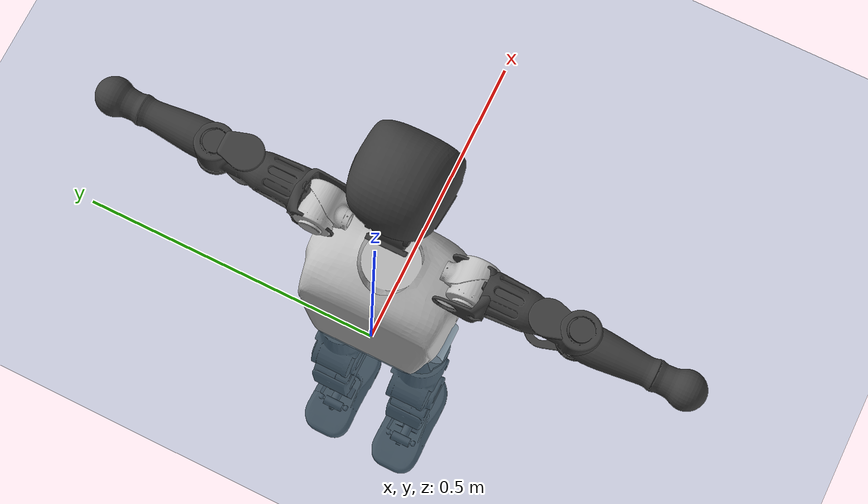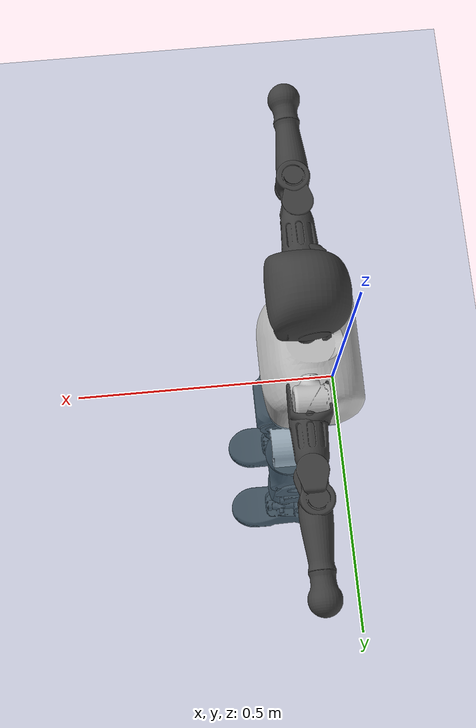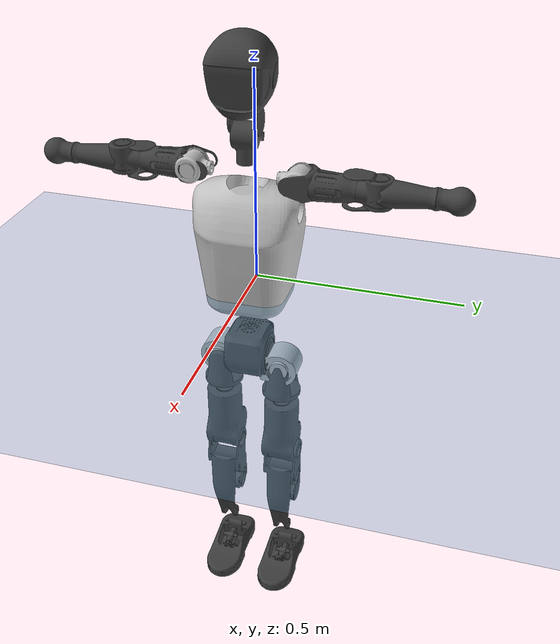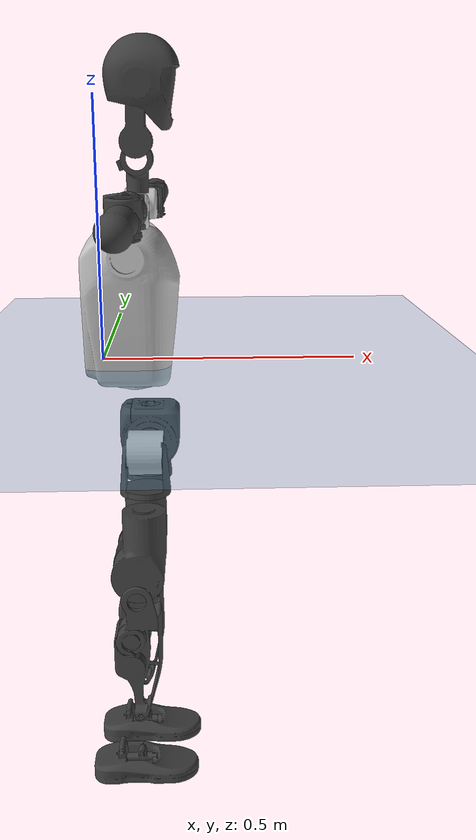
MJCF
<mujoco model="T1">
  <compiler angle="radian" assetdir="assets" balanceinertia="true" inertiafromgeom="false"/>

  <option timestep="0.005" density="1.2" viscosity="2e-05"/>

  <size nkey="1"/>

  <visual>
    <quality shadowsize="8192"/>
    <map shadowclip="0.5"/>
  </visual>

  <default>
    <default class="/">
      <joint armature="0.01" damping="0.01" frictionloss="0.1"/>
      <geom contype="0" conaffinity="0" group="1" solref="-1000 -80"/>
      <site size="0.01 0.005 0.005" group="5"/>
      <general forcelimited="true" biastype="affine" gainprm="25" biasprm="0 -25 -0.6"/>
      <default class="t1">
        <geom rgba="0.25 0.25 0.25 1"/>
        <default class="visual">
          <geom type="mesh" group="2"/>
        </default>
        <default class="collision">
          <geom group="3"/>
        </default>
        <default class="foot">
          <geom size="0.1115 0.05 0.015" type="box" condim="6" group="4" priority="1" solimp="0.015 1 0.015"/>
        </default>
        <default class="reward_collision_sphere">
          <geom group="5" rgba="1 0 0 1"/>
        </default>
      </default>
    </default>
  </default>

  <asset>
    <texture type="skybox" colorspace="auto" name="//unnamed_texture_0" builtin="gradient" rgb1="0.95 0.95 0.95" rgb2="0.95 0.95 0.95" width="100" height="600"/>
    <texture type="2d" colorspace="auto" name="texplane" builtin="checker" rgb1="0.345 0.575 0.748" rgb2="0.345 0.575 0.748" markrgb="1 1 1" width="512" height="512"/>
    <material name="MatPlane" class="/" texture="texplane" texuniform="true" texrepeat="2 2" specular="0.9"/>
    <mesh name="Trunk" class="/" file="Trunk.stl"/>
    <mesh name="H1" class="/" file="H1.stl"/>
    <mesh name="H2" class="/" file="H2.stl"/>
    <mesh name="AL1" class="/" file="AL1.stl"/>
    <mesh name="AL2" class="/" file="AL2.stl"/>
    <mesh name="AL3" class="/" file="AL3.stl"/>
    <mesh name="left_hand_link" class="/" file="left_hand_link.stl"/>
    <mesh name="AR1" class="/" file="AR1.stl"/>
    <mesh name="AR2" class="/" file="AR2.stl"/>
    <mesh name="AR3" class="/" file="AR3.stl"/>
    <mesh name="right_hand_link" class="/" file="right_hand_link.stl"/>
    <mesh name="Waist" class="/" file="Waist.stl"/>
    <mesh name="Hip_Pitch_Left" class="/" file="Hip_Pitch_Left.stl"/>
    <mesh name="Hip_Roll_Left" class="/" file="Hip_Roll_Left.stl"/>
    <mesh name="Hip_Yaw_Left" class="/" file="Hip_Yaw_Left.stl"/>
    <mesh name="Shank_Left" class="/" file="Shank_Left.stl"/>
    <mesh name="Ankle_Cross_Left" class="/" file="Ankle_Cross_Left.stl"/>
    <mesh name="left_foot_link" class="/" file="left_foot_link.stl"/>
    <mesh name="Hip_Pitch_Right" class="/" file="Hip_Pitch_Right.stl"/>
    <mesh name="Hip_Roll_Right" class="/" file="Hip_Roll_Right.stl"/>
    <mesh name="Hip_Yaw_Right" class="/" file="Hip_Yaw_Right.stl"/>
    <mesh name="Shank_Right" class="/" file="Shank_Right.stl"/>
    <mesh name="Ankle_Cross_Right" class="/" file="Ankle_Cross_Right.stl"/>
    <mesh name="right_foot_link" class="/" file="right_foot_link.stl"/>
  </asset>

  <worldbody>
    <geom name="floor" class="/" size="100 100 0.125" type="plane" group="0" material="MatPlane"/>
    <light name="toplight_shadow" class="/" pos="0 0 5" dir="0.0990148 0.0990148 -0.990148" type="directional" ambient="0.04 0.04 0.04" diffuse="0.55 0.55 0.55" specular="0.12 0.12 0.12"/>
    <light name="toplight_fill" class="/" pos="0 0 5" dir="0.0990148 0.0990148 -0.990148" type="directional" castshadow="false" ambient="0.04 0.04 0.04" diffuse="0.3 0.3 0.3" specular="0.08 0.08 0.08"/>
    <body name="trunk" childclass="t1" pos="0.000601355 0.00070458 -0.00601751" quat="1 -6.48826e-05 0.000109399 -0.000148739">
      <inertial pos="0.0653369 0.00418994 0.142686" quat="0.999564 0.000115144 -0.0292424 0.00396377" mass="15.2803" diaginertia="0.26569 0.0120584 0.245088"/>
      <joint name="//unnamed_joint_0" type="free" armature="0" damping="0" frictionloss="0"/>
      <geom name="//unnamed_geom_1" class="visual" rgba="0.76 0.76 0.76 1" mesh="Trunk"/>
      <geom name="//unnamed_geom_2" class="collision" size="0.0816924 0.108923 0.163385" pos="0.0746672 0 0.160861" type="box"/>
      <geom name="//unnamed_geom_3" class="reward_collision_sphere" size="0.125262" pos="0.0746672 0 0.134051"/>
      <geom name="//unnamed_geom_4" class="reward_collision_sphere" size="0.0163385" pos="0.0746672 0.0580327 0"/>
      <geom name="//unnamed_geom_5" class="reward_collision_sphere" size="0.0163385" pos="0.0746672 -0.0580327 0"/>
      <geom name="//unnamed_geom_6" class="reward_collision_sphere" size="0.0163385" pos="0.0746672 0.0730529 0.241291"/>
      <geom name="//unnamed_geom_7" class="reward_collision_sphere" size="0.0163385" pos="0.0746672 -0.0730529 0.241291"/>
      <site name="imu" pos="0.00111949 -0.0380437 0.00951404" size="0.0108923"/>
      <camera name="track" pos="0 -1.36547 0" quat="0.707107 0.707107 0 0" mode="trackcom"/>
      <camera name="ego_camera" pos="0.151823 0 0.563013" quat="-0.5 -0.5 0.5 0.5"/>
      <body name="H1" pos="0.0772513 0.00331226 0.326482" quat="0.999993 -0.0012243 0.00328477 0.00105889">
        <inertial pos="-0.00332016 -0.00300336 0.0749366" quat="0.762717 -0.010505 -0.00164819 0.646645" mass="0.634883" diaginertia="0.000754824 3.21952e-05 0.000656649"/>
        <joint name="AAHead_yaw" pos="0 0 0" axis="0.00232985 -0.00468888 0.999986" range="-1.60876 1.38273" armature="0.00990026" damping="0.0326225" frictionloss="0.133176"/>
        <geom name="//unnamed_geom_8" class="visual" mesh="H1"/>
        <body name="H2" pos="-0.000943957 0.00159088 0.0937577" quat="0.999986 0.00361912 0.00225133 -0.00304715">
          <inertial pos="0.0115908 -0.00427864 0.126265" quat="0.98853 0.113867 -0.0802421 -0.0583391" mass="0.809867" diaginertia="0.00598418 0.000270852 0.00776642"/>
          <joint name="Head_pitch" pos="0 0 0" axis="-0.0091201 -0.999576 0.0276467" stiffness="0.0208593" range="-1.21628 0.385149" armature="0.0119432" damping="0.00167271" frictionloss="0.118767"/>
          <geom name="//unnamed_geom_9" class="visual" mesh="H2"/>
          <geom name="//unnamed_geom_10" class="collision" size="0.0871386" pos="0.0124445 0 0.147456"/>
          <geom name="//unnamed_geom_11" class="reward_collision_sphere" size="0.0980309" pos="0.0248891 0 0.134051"/>
        </body>
      </body>
      <body name="AL1" pos="0.0768832 0.0746449 0.298417" quat="0.999999 -0.000657178 0.00121343 -0.000431695">
        <inertial pos="-0.00174643 0.0344603 9.03e-05" quat="0.494575 0.5304 -0.486573 0.487153" mass="0.750783" diaginertia="0.00451935 0.000206733 0.00132496"/>
        <joint name="Left_Shoulder_Pitch" pos="0 0 0" axis="0.0173861 0.999848 0.00152254" stiffness="0.0164986" range="-3.48485 1.23644" armature="0.0139272" damping="0.0250436" frictionloss="0.12253"/>
        <geom name="//unnamed_geom_12" class="visual" rgba="0.76 0.76 0.76 1" mesh="AL1"/>
        <body name="AL2" pos="0.00500012 0.0327919 -0.000106596" quat="0.999992 -0.00105764 -0.000808265 -0.00387487">
          <inertial pos="-0.00499813 0.0224639 -0.000150695" quat="0.485765 0.524699 -0.488049 0.500531" mass="0.222058" diaginertia="0.00128832 5.50864e-05 0.000849747"/>
          <joint name="Left_Shoulder_Roll" pos="0 0 0" axis="-0.999856 -0.0138414 0.00983771" range="-1.56208 1.73041" armature="0.00843146" damping="0" frictionloss="0.101234"/>
          <geom name="//unnamed_geom_13" class="visual" mesh="AL2"/>
          <body name="AL3" pos="0.00516826 0.0433951 -0.000258305" quat="0.999993 0.0037204 -0.000913433 0.000377489">
            <inertial pos="-0.00879843 0.0589419 -0.00310796" quat="0.735787 0.676636 -0.012196 0.0251501" mass="1.14762" diaginertia="0.0337563 0.00143848 0.00240311"/>
            <joint name="Left_Elbow_Pitch" pos="0 0 0" axis="0.000370228 -1 0.000843406" range="-2.31128 2.07648" armature="0.00734889" damping="0.0118268" frictionloss="0.056317"/>
            <geom name="//unnamed_geom_14" class="visual" mesh="AL3"/>
            <geom name="//unnamed_geom_15" class="collision" size="0.032677 0.0816924" pos="0 0.0341369 0" quat="0.707105 0.707108 0 0" type="cylinder"/>
            <geom name="//unnamed_geom_16" class="reward_collision_sphere" size="0.0392124"/>
            <body name="left_hand_link" pos="0.00455344 0.0984802 0.0018522" quat="0.999989 0.00140856 -0.00359196 0.0026805">
              <inertial pos="-0.000654254 0.0693129 0.00241802" quat="0.707915 0.706297 -0.000483603 -0.000424527" mass="0.442828" diaginertia="0.0217761 0.00112091 0.00102488"/>
              <joint name="Left_Elbow_Yaw" pos="0 0 0" axis="0.0284555 -0.0215906 0.999362" range="-2.3791 -0.191145" armature="0.0142549" damping="0.0424681" frictionloss="0.0913741"/>
              <geom name="//unnamed_geom_17" class="visual" mesh="left_hand_link"/>
              <geom name="//unnamed_geom_18" class="collision" size="0.032677 0.0953078" pos="0 0.0887558 0" quat="0.707105 0.707108 0 0" type="cylinder"/>
              <geom name="//unnamed_geom_19" class="reward_collision_sphere" size="0.0544616"/>
              <geom name="//unnamed_geom_20" class="reward_collision_sphere" size="0.0381231" pos="0 0.0751011 0"/>
              <geom name="//unnamed_geom_21" class="reward_collision_sphere" size="0.0381231" pos="0 0.146788 0"/>
            </body>
          </body>
        </body>
      </body>
      <body name="AR1" pos="0.0705204 -0.0786594 0.301927" quat="1 0.000350121 0.000358869 -4.24347e-05">
        <inertial pos="-0.000458393 -0.0234056 0.00211998" quat="0.503639 0.494178 -0.50572 0.496369" mass="0.656174" diaginertia="0.00399758 0.000199729 0.00124093"/>
        <joint name="Right_Shoulder_Pitch" pos="0 0 0" axis="0.0290776 -0.998756 -0.0405111" stiffness="0.0129158" range="-1.21729 3.13672" armature="0.0105818" damping="0" frictionloss="0.158235"/>
        <geom name="//unnamed_geom_22" class="visual" rgba="0.76 0.76 0.76 1" mesh="AR1"/>
        <body name="AR2" pos="-0.0102718 -0.0235021 -0.000206561" quat="1 -0.000110907 -9.17922e-05 8.89312e-05">
          <inertial pos="-0.00102946 -0.0253878 0.00256364" quat="0.512847 0.489315 -0.513692 0.483403" mass="0.16439" diaginertia="0.00105414 4.75487e-05 0.000666099"/>
          <joint name="Right_Shoulder_Roll" pos="0 0 0" axis="-0.999391 0.00273521 0.0348001" stiffness="0.0319292" range="-1.70487 1.45578" armature="0.0104161" damping="0.0395271" frictionloss="0.0723756"/>
          <geom name="//unnamed_geom_23" class="visual" mesh="AR2"/>
          <body name="AR3" pos="0.00726607 -0.0408978 0.00262278" quat="0.999999 0.000898 0.000940458 0.00112221">
            <inertial pos="-0.00121001 -0.0645414 0.00313" quat="0.709829 0.704282 0.0113142 -0.00133565" mass="1.04931" diaginertia="0.0330239 0.00163208 0.00229327"/>
            <joint name="Right_Elbow_Pitch" pos="0 0 0" axis="0.00278993 0.999974 -0.0065854" stiffness="0.0534774" range="-2.145 2.41362" armature="0.00997095" damping="0.00231191" frictionloss="0.105539"/>
            <geom name="//unnamed_geom_24" class="visual" mesh="AR3"/>
            <geom name="//unnamed_geom_25" class="collision" size="0.032677 0.0816924" pos="0 -0.0341369 0" quat="0.707105 0.707108 0 0" type="cylinder"/>
            <geom name="//unnamed_geom_26" class="reward_collision_sphere" size="0.0392124"/>
            <body name="right_hand_link" pos="-0.00285468 -0.0983527 -0.00563233" quat="1 0.00025526 3.94784e-05 -0.000163021">
              <inertial pos="-0.00153352 -0.0734996 0.0100735" quat="0.689846 0.723954 0.00166348 -0.000878817" mass="0.501189" diaginertia="0.0261783 0.00125698 0.00100429"/>
              <joint name="Right_Elbow_Yaw" pos="0 0 0" axis="0.0257535 0.00487189 0.999656" stiffness="0.0004511" range="-0.0330366 2.29107" armature="0.0104601" damping="0.0113228" frictionloss="0.0996237"/>
              <geom name="//unnamed_geom_27" class="visual" mesh="right_hand_link"/>
              <geom name="//unnamed_geom_28" class="collision" size="0.032677 0.0953078" pos="0 -0.0887558 0" quat="0.707105 0.707108 0 0" type="cylinder"/>
              <geom name="//unnamed_geom_29" class="reward_collision_sphere" size="0.0544616"/>
              <geom name="//unnamed_geom_30" class="reward_collision_sphere" size="0.0381231" pos="0 -0.0751011 0"/>
              <geom name="//unnamed_geom_31" class="reward_collision_sphere" size="0.0381231" pos="0 -0.146788 0"/>
            </body>
          </body>
        </body>
      </body>
      <body name="Waist" pos="0.0887645 0.0071513 -0.154478" quat="0.999995 -0.00149037 0.00158341 0.00215624">
        <inertial pos="0.00529973 0.00618287 0.0110799" quat="0.983662 0.000419073 -0.180009 0.00242746" mass="3.49258" diaginertia="0.0178 0.000892021 0.023658"/>
        <joint name="Waist" pos="0 0 0" axis="0.0088088 0.0202546 0.999756" range="-1.60488 1.54213" armature="0.0104375" damping="0.0149785" frictionloss="0.157102"/>
        <geom name="//unnamed_geom_32" class="visual" mesh="Waist"/>
        <body name="Hip_Pitch_Left" pos="-0.00165546 0.0808437 -0.00640829" quat="0.999994 -0.000223037 -0.00334115 0.000103811">
          <inertial pos="0.00333886 -0.00512262 -0.0246369" quat="0.976554 0.213816 0.0210085 0.0135441" mass="1.32461" diaginertia="0.0055501 0.000197126 0.00580627"/>
          <joint name="Left_Hip_Pitch" pos="0 0 0" axis="-0.00129488 0.999997 0.00208926" stiffness="0.04184" range="-1.82965 1.55517" armature="0.0110876" damping="0.0170054" frictionloss="0.0996423"/>
          <geom name="//unnamed_geom_33" class="visual" rgba="0.76 0.76 0.76 1" mesh="Hip_Pitch_Left"/>
          <body name="Hip_Roll_Left" pos="-0.0078287 -0.00179926 -0.0306814" quat="0.999986 -0.000217888 -0.00458305 -0.00249642">
            <inertial pos="0.00983725 0.00666521 -0.0723777" quat="0.71869 0.0328058 0.0201914 0.694263" mass="0.513512" diaginertia="0.00571188 0.000230042 0.00227246"/>
            <joint name="Left_Hip_Roll" pos="0 0 0" axis="-0.998659 -0.00709487 0.0512789" range="-1.45359 0.0344934" armature="0.00688807" damping="0.0111917" frictionloss="0.0993352"/>
            <geom name="//unnamed_geom_34" class="visual" mesh="Hip_Roll_Left"/>
            <geom name="//unnamed_geom_35" class="reward_collision_sphere" size="0.0599078"/>
            <body name="Hip_Yaw_Left" pos="-0.0108465 -0.00187795 -0.116938" quat="0.99999 3.87068e-05 0.000624615 -0.00434342">
              <inertial pos="-0.00790948 -0.00206635 -0.116444" quat="0.694881 -0.0352191 -0.0354815 0.717385" mass="2.7339" diaginertia="0.0817213 0.00377725 0.010363"/>
              <joint name="Left_Hip_Yaw" pos="0 0 0" axis="-0.0148855 0.000531921 -0.999889" range="-1.00636 1.18575" armature="0.0115385" damping="0" frictionloss="0.093656"/>
              <geom name="//unnamed_geom_36" class="visual" mesh="Hip_Yaw_Left"/>
              <geom name="//unnamed_geom_37" class="collision" size="0.0544616 0.0871386" type="cylinder"/>
              <body name="Shank_Left" pos="-0.0193918 0.00111925 -0.170157" quat="0.999999 0.000893509 -0.000765781 -4.00998e-05">
                <inertial pos="-0.0142518 0.00768156 -0.165296" quat="0.997711 0.00158411 -0.0214661 0.0641041" mass="2.31593" diaginertia="0.104888 0.00544543 0.0081143"/>
                <joint name="Left_Knee_Pitch" pos="0 0 0" axis="-0.0269927 0.999615 -0.00634601" range="-0.0740397 2.29562" armature="0.0119216" damping="0" frictionloss="0.117339"/>
                <geom name="//unnamed_geom_38" class="visual" mesh="Shank_Left"/>
                <geom name="//unnamed_geom_39" class="collision" size="0.0544616 0.0816924" pos="0 0 -0.160861" type="cylinder"/>
                <geom name="//unnamed_geom_40" class="reward_collision_sphere" size="0.0708001"/>
                <body name="Ankle_Cross_Left" pos="0.00137754 0.00382003 -0.384304" quat="0.999999 -0.000103742 0.00150907 0.000842472">
                  <inertial pos="-0.0101737 -0.00096122 -0.00736618" quat="0.446172 0.553872 0.543905 0.445336" mass="0.0860845" diaginertia="8.4901e-05 3.96716e-06 4.97165e-05"/>
                  <joint name="Left_Ankle_Pitch" pos="0 0 0" axis="-0.0094108 0.999914 0.00911283" range="-0.856008 0.329492" armature="0.0116732" damping="0" frictionloss="0.138529"/>
                  <geom name="//unnamed_geom_41" class="visual" mesh="Ankle_Cross_Left"/>
                  <body name="left_foot_link" pos="0.000990919 -0.00333771 -0.0116565" quat="1 9.5809e-06 1.17126e-05 1.34359e-05">
                    <inertial pos="-0.00166236 -0.00654006 -0.0138654" quat="-0.0180677 0.622844 0.0134427 0.782022" mass="0.972988" diaginertia="0.00694434 0.000336024 0.00908768"/>
                    <joint name="Left_Ankle_Roll" pos="0 0 0" axis="-0.999783 0.01448 -0.0149651" range="-0.420266 0.263123" armature="0.00595501" damping="0.010096" frictionloss="0.101829"/>
                    <geom name="//unnamed_geom_42" class="visual" mesh="left_foot_link"/>
                    <geom name="left_foot" class="foot" size="0.103928 0.0634742 0.0165994" pos="0.0124445 0 -0.0201076"/>
                    <geom name="//unnamed_geom_44" class="reward_collision_sphere" size="0.0566401" pos="0.0124445 0 -0.0201076"/>
                    <geom name="//unnamed_geom_45" class="reward_collision_sphere" size="0.032677" pos="0.118223 -0.015703 -0.0201076"/>
                    <geom name="//unnamed_geom_46" class="reward_collision_sphere" size="0.032677" pos="-0.0871117 -0.015703 -0.0201076"/>
                    <site name="left_foot" class="foot" pos="0.0124445 0 -0.0201076" size="0.0108923"/>
                  </body>
                </body>
              </body>
            </body>
          </body>
        </body>
        <body name="Hip_Pitch_Right" pos="-0.00717887 -0.0744899 0.00604063" quat="0.999999 -0.000570694 -0.00081467 -0.000766784">
          <inertial pos="0.00840736 0.00550191 -0.0237331" quat="0.97579 -0.217161 0.0192033 -0.0174959" mass="1.39866" diaginertia="0.00547612 0.000223232 0.00558368"/>
          <joint name="Right_Hip_Pitch" pos="0 0 0" axis="-0.0016856 -0.999997 -0.00150503" stiffness="0.013415" range="-1.56274 1.87455" armature="0.005248" damping="0.000936567" frictionloss="0.12492"/>
          <geom name="//unnamed_geom_47" class="visual" rgba="0.76 0.76 0.76 1" mesh="Hip_Pitch_Right"/>
          <body name="Hip_Roll_Right" pos="-0.000781263 0.00363347 -0.0284252" quat="1 0.000586997 0.000696953 0.000142103">
            <inertial pos="0.00293295 0.0088991 -0.0662118" quat="0.710835 0.0247937 -0.0309601 0.70224" mass="0.569793" diaginertia="0.00599631 0.000261178 0.0025095"/>
            <joint name="Right_Hip_Roll" pos="0 0 0" axis="-0.999952 -0.00545055 -0.00817261" stiffness="0.00144457" range="-0.233417 1.56816" armature="0.0100554" damping="0.0107353" frictionloss="0.142536"/>
            <geom name="//unnamed_geom_48" class="visual" mesh="Hip_Roll_Right"/>
            <geom name="//unnamed_geom_49" class="reward_collision_sphere" size="0.0599078"/>
            <body name="Hip_Yaw_Right" pos="-0.00683969 -0.00345463 -0.114893" quat="0.999996 0.00110321 0.00188915 -0.00182977">
              <inertial pos="-0.00822694 0.0102596 -0.122138" quat="0.71697 -0.0269592 -0.0380982 0.695539" mass="3.02643" diaginertia="0.086112 0.0042176 0.0127723"/>
              <joint name="Right_Hip_Yaw" pos="0 0 0" axis="-0.0192847 -0.000862404 -0.999814" range="-0.933023 0.86383" armature="0.0106839" damping="0" frictionloss="0.108136"/>
              <geom name="//unnamed_geom_50" class="visual" mesh="Hip_Yaw_Right"/>
              <geom name="//unnamed_geom_51" class="collision" size="0.0544616 0.0871386" type="cylinder"/>
              <body name="Shank_Right" pos="-0.0167967 -0.00348579 -0.180993" quat="1 0.000130828 -0.000249602 -0.000524122">
                <inertial pos="-0.00900653 -0.000598542 -0.162127" quat="0.999337 -0.000324787 -0.0212148 -0.0295906" mass="2.44506" diaginertia="0.129146 0.00571656 0.00924495"/>
                <joint name="Right_Knee_Pitch" pos="0 0 0" axis="0.0107964 -0.999625 -0.0251701" stiffness="0.036288" range="-2.40276 -0.0443019" armature="0.0108306" damping="0.00836365" frictionloss="0.118962"/>
                <geom name="//unnamed_geom_52" class="visual" mesh="Shank_Right"/>
                <geom name="//unnamed_geom_53" class="collision" size="0.0544616 0.0816924" pos="0 0 -0.160861" type="cylinder"/>
                <geom name="//unnamed_geom_54" class="reward_collision_sphere" size="0.0708001"/>
                <body name="Ankle_Cross_Right" pos="0.00117486 -0.00254282 -0.37874" quat="0.999994 0.00294934 -0.000332387 0.00162116">
                  <inertial pos="-0.00469268 0.0017006 -0.00194943" quat="0.456501 0.551873 0.516275 0.469578" mass="0.101243" diaginertia="0.000107124 3.84784e-06 6.01119e-05"/>
                  <joint name="Right_Ankle_Pitch" pos="0 0 0" axis="0.00597539 -0.999422 0.0334788" stiffness="0.0334912" range="-0.456478 0.838156" armature="0.0109445" damping="0.0346386" frictionloss="0.144464"/>
                  <geom name="//unnamed_geom_55" class="visual" mesh="Ankle_Cross_Right"/>
                  <body name="right_foot_link" pos="-0.000955523 0.00196149 -0.0201672" quat="1 -0.000812601 -0.000109091 -0.000362928">
                    <inertial pos="0.0101625 0.00536931 -0.0120414" quat="0.00973277 0.606402 0.0173633 0.794909" mass="0.87607" diaginertia="0.00800934 0.000354867 0.0101014"/>
                    <joint name="Right_Ankle_Roll" pos="0 0 0" axis="-0.999998 -0.000184381 -0.00196519" range="-0.448682 0.476667" armature="0.00922207" damping="0" frictionloss="0.118922"/>
                    <geom name="//unnamed_geom_56" class="visual" mesh="right_foot_link"/>
                    <geom name="right_foot" class="foot" size="0.096019 0.047184 0.0152939" pos="0.0124445 0 -0.0201076"/>
                    <geom name="//unnamed_geom_58" class="reward_collision_sphere" size="0.0435693"/>
                    <geom name="//unnamed_geom_59" class="reward_collision_sphere" size="0.032677" pos="0.0124445 0 -0.0201076"/>
                    <geom name="//unnamed_geom_60" class="reward_collision_sphere" size="0.032677" pos="0.118223 0.015703 -0.0201076"/>
                    <geom name="//unnamed_geom_61" class="reward_collision_sphere" size="0.032677" pos="-0.0871117 0.015703 -0.0201076"/>
                    <site name="right_foot" class="foot" pos="0.0124445 0 -0.0201076" size="0.0108923"/>
                  </body>
                </body>
              </body>
            </body>
          </body>
        </body>
      </body>
    </body>
  </worldbody>

  <contact>
    <pair class="/" geom1="floor" geom2="left_foot" name="//unnamed_contact_0"/>
    <pair class="/" geom1="floor" geom2="right_foot" name="//unnamed_contact_1"/>
  </contact>

  <actuator>
    <general name="AAHead_yaw" class="/" joint="AAHead_yaw" forcerange="-6.16596 6.16596" gainprm="27.9821" biasprm="0 -27.9821 -0.720672"/>
    <general name="Head_pitch" class="/" joint="Head_pitch" forcerange="-6.02447 6.02447" gainprm="27.9821" biasprm="0 -27.9821 -0.720672"/>
    <general name="Left_Shoulder_Pitch" class="/" joint="Left_Shoulder_Pitch" forcerange="-20.8685 20.8685" gainprm="27.9821" biasprm="0 -27.9821 -0.720672"/>
    <general name="Left_Shoulder_Roll" class="/" joint="Left_Shoulder_Roll" forcerange="-20.1832 20.1832" gainprm="27.9821" biasprm="0 -27.9821 -0.720672"/>
    <general name="Left_Elbow_Pitch" class="/" joint="Left_Elbow_Pitch" forcerange="-13.451 13.451" gainprm="27.9821" biasprm="0 -27.9821 -0.720672"/>
    <general name="Left_Elbow_Yaw" class="/" joint="Left_Elbow_Yaw" forcerange="-23.1495 23.1495" gainprm="27.9821" biasprm="0 -27.9821 -0.720672"/>
    <general name="Right_Shoulder_Pitch" class="/" joint="Right_Shoulder_Pitch" forcerange="-26.5537 26.5537" gainprm="27.9821" biasprm="0 -27.9821 -0.720672"/>
    <general name="Right_Shoulder_Roll" class="/" joint="Right_Shoulder_Roll" forcerange="-18.1856 18.1856" gainprm="27.9821" biasprm="0 -27.9821 -0.720672"/>
    <general name="Right_Elbow_Pitch" class="/" joint="Right_Elbow_Pitch" forcerange="-13.2077 13.2077" gainprm="27.9821" biasprm="0 -27.9821 -0.720672"/>
    <general name="Right_Elbow_Yaw" class="/" joint="Right_Elbow_Yaw" forcerange="-18.178 18.178" gainprm="27.9821" biasprm="0 -27.9821 -0.720672"/>
    <general name="Waist" class="/" joint="Waist" forcerange="-32.7439 32.7439" gainprm="27.9821" biasprm="0 -27.9821 -0.720672"/>
    <general name="Left_Hip_Pitch" class="/" joint="Left_Hip_Pitch" forcerange="-51.493 51.493" gainprm="27.9821" biasprm="0 -27.9821 -0.720672"/>
    <general name="Left_Hip_Roll" class="/" joint="Left_Hip_Roll" forcerange="-22.9447 22.9447" gainprm="27.9821" biasprm="0 -27.9821 -0.720672"/>
    <general name="Left_Hip_Yaw" class="/" joint="Left_Hip_Yaw" forcerange="-45.0106 45.0106" gainprm="27.9821" biasprm="0 -27.9821 -0.720672"/>
    <general name="Left_Knee_Pitch" class="/" joint="Left_Knee_Pitch" forcerange="-50.1525 50.1525" gainprm="27.9821" biasprm="0 -27.9821 -0.720672"/>
    <general name="Left_Ankle_Pitch" class="/" joint="Left_Ankle_Pitch" forcerange="-30.8413 30.8413" gainprm="27.9821" biasprm="0 -27.9821 -0.720672"/>
    <general name="Left_Ankle_Roll" class="/" joint="Left_Ankle_Roll" forcerange="-15.1907 15.1907" gainprm="27.9821" biasprm="0 -27.9821 -0.720672"/>
    <general name="Right_Hip_Pitch" class="/" joint="Right_Hip_Pitch" forcerange="-48.072 48.072" gainprm="27.9821" biasprm="0 -27.9821 -0.720672"/>
    <general name="Right_Hip_Roll" class="/" joint="Right_Hip_Roll" forcerange="-37.2437 37.2437" gainprm="27.9821" biasprm="0 -27.9821 -0.720672"/>
    <general name="Right_Hip_Yaw" class="/" joint="Right_Hip_Yaw" forcerange="-37.2005 37.2005" gainprm="27.9821" biasprm="0 -27.9821 -0.720672"/>
    <general name="Right_Knee_Pitch" class="/" joint="Right_Knee_Pitch" forcerange="-47.7497 47.7497" gainprm="27.9821" biasprm="0 -27.9821 -0.720672"/>
    <general name="Right_Ankle_Pitch" class="/" joint="Right_Ankle_Pitch" forcerange="-18.4295 18.4295" gainprm="27.9821" biasprm="0 -27.9821 -0.720672"/>
    <general name="Right_Ankle_Roll" class="/" joint="Right_Ankle_Roll" forcerange="-21.7192 21.7192" gainprm="27.9821" biasprm="0 -27.9821 -0.720672"/>
  </actuator>

  <sensor>
    <gyro site="imu" name="imu_angular_velocity"/>
    <velocimeter site="imu" name="imu_linear_velocity"/>
    <framelinvel objtype="site" objname="left_foot" name="left_foot_global_linear_velocity"/>
    <framelinvel objtype="site" objname="right_foot" name="right_foot_global_linear_velocity"/>
  </sensor>

  <keyframe>
    <key name="home" qpos="0 0 0.6385 1 0 0 0 0 0 0 1.4 0 -0.4 0 -1.4 0 0.4 0 -0.4 0 0 0.8 -0.4 0 0.4 0 0 -0.8 0.4 0"/>
  </keyframe>
</mujoco>
